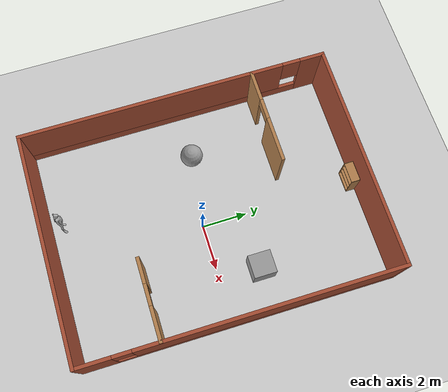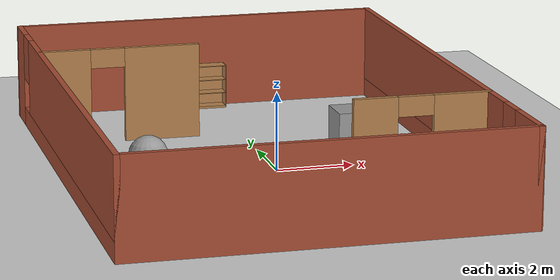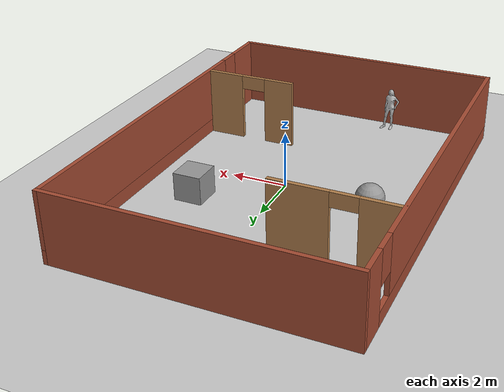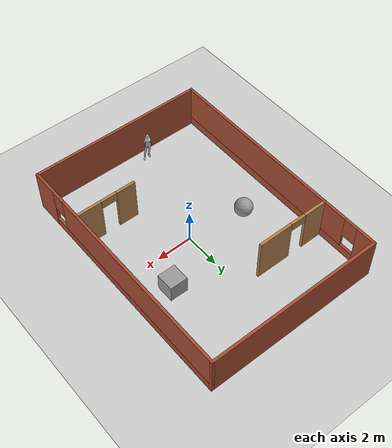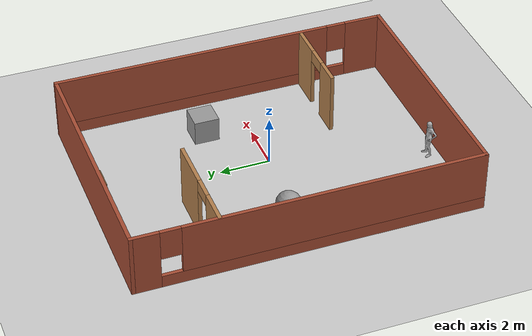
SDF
<sdf version="1.7">
 <world name="default">
  <light name="sun" type="directional">
   <pose>0 0 10 0 -0 0</pose>
   <diffuse>0.8 0.8 0.8 1</diffuse>
   <specular>0.2 0.2 0.2 1</specular>
   <attenuation>
    <range>1000</range>
    <constant>0.9</constant>
    <linear>0.01</linear>
    <quadratic>0.001</quadratic>
   </attenuation>
   <direction>-0.5 0.1 -0.9</direction>
   <spot><inner_angle>0</inner_angle><outer_angle>0</outer_angle><falloff>0</falloff></spot>
  </light>
  <model name="ground_plane">
   <static>1</static>
   <link name="link">
    <collision name="collision">
     <geometry><plane><normal>0 0 1</normal><size>100 100</size></plane></geometry>
     <surface>
      <contact><collide_bitmask>65535</collide_bitmask></contact>
      <friction><ode><mu>100</mu><mu2>50</mu2></ode></friction>
     </surface>
    </collision>
    <visual name="visual">
     <cast_shadows>0</cast_shadows>
     <geometry><plane><normal>0 0 1</normal><size>100 100</size></plane></geometry>
     <material>
      <script><uri>file://media/materials/scripts/gazebo.material</uri><name>Gazebo/Grey</name></script>
     </material>
    </visual>
   </link>
  </model>
  <gravity>0 0 -9.8</gravity>
  <magnetic_field>6e-06 2.3e-05 -4.2e-05</magnetic_field>
  <atmosphere type="adiabatic"/>
  <physics type="ode">
   <max_step_size>0.001</max_step_size>
   <real_time_factor>1</real_time_factor>
   <real_time_update_rate>1000</real_time_update_rate>
  </physics>
  <scene><ambient>0.4 0.4 0.4 1</ambient><background>0.7 0.7 0.7 1</background><shadows>1</shadows></scene>
  <spherical_coordinates>
   <surface_model>EARTH_WGS84</surface_model>
   <latitude_deg>0</latitude_deg>
   <longitude_deg>0</longitude_deg>
   <elevation>0</elevation>
   <heading_deg>0</heading_deg>
  </spherical_coordinates>
  <model name="gjjroom">
   <pose>-0.411943 0.323415 0 0 -0 0</pose>
   <link name="Wall_12">
    <pose>-4.925 0 0 0 -0 -1.5708</pose>
    <visual name="Wall_12_Visual_0">
     <pose>-6.3093 0 1.25 0 -0 0</pose>
     <geometry><box><size>1.1314 0.15 2.5</size></box></geometry>
     <material>
      <script><uri>file://media/materials/scripts/gazebo.material</uri><name>Gazebo/Bricks</name></script>
      <ambient>1 1 1 1</ambient>
     </material>
     <meta><layer>0</layer></meta>
    </visual>
    <collision name="Wall_12_Collision_0">
     <geometry><box><size>1.1314 0.15 2.5</size></box></geometry>
     <pose>-6.3093 0 1.25 0 -0 0</pose>
    </collision>
    <visual name="Wall_12_Visual_1">
     <pose>0.5657 0 0.25 0 -0 0</pose>
     <geometry><box><size>12.6186 0.15 0.5</size></box></geometry>
     <material>
      <script><uri>file://media/materials/scripts/gazebo.material</uri><name>Gazebo/Bricks</name></script>
      <ambient>1 1 1 1</ambient>
     </material>
     <meta><layer>0</layer></meta>
    </visual>
    <collision name="Wall_12_Collision_1">
     <geometry><box><size>12.6186 0.15 0.5</size></box></geometry>
     <pose>0.5657 0 0.25 0 -0 0</pose>
    </collision>
    <visual name="Wall_12_Visual_2">
     <pose>0.9657 0 1.5 0 -0 0</pose>
     <geometry><box><size>11.8186 0.15 2</size></box></geometry>
     <material>
      <script><uri>file://media/materials/scripts/gazebo.material</uri><name>Gazebo/Bricks</name></script>
      <ambient>1 1 1 1</ambient>
     </material>
     <meta><layer>0</layer></meta>
    </visual>
    <collision name="Wall_12_Collision_2">
     <geometry><box><size>11.8186 0.15 2</size></box></geometry>
     <pose>0.9657 0 1.5 0 -0 0</pose>
    </collision>
    <visual name="Wall_12_Visual_3">
     <pose>-5.3436 0 1.9 0 -0 0</pose>
     <geometry><box><size>0.8 0.15 1.2</size></box></geometry>
     <material>
      <script><uri>file://media/materials/scripts/gazebo.material</uri><name>Gazebo/Bricks</name></script>
      <ambient>1 1 1 1</ambient>
     </material>
     <meta><layer>0</layer></meta>
    </visual>
    <collision name="Wall_12_Collision_3">
     <geometry><box><size>0.8 0.15 1.2</size></box></geometry>
     <pose>-5.3436 0 1.9 0 -0 0</pose>
    </collision>
   </link>
   <link name="Wall_13">
    <collision name="Wall_13_Collision">
     <geometry><box><size>10 0.15 2.5</size></box></geometry>
     <pose>0 0 1.25 0 -0 0</pose>
    </collision>
    <visual name="Wall_13_Visual">
     <pose>0 0 1.25 0 -0 0</pose>
     <geometry><box><size>10 0.15 2.5</size></box></geometry>
     <material>
      <script><uri>file://media/materials/scripts/gazebo.material</uri><name>Gazebo/Bricks</name></script>
      <ambient>1 1 1 1</ambient>
     </material>
     <meta><layer>0</layer></meta>
    </visual>
    <pose>0 -6.8 0 0 -0 0</pose>
   </link>
   <link name="Wall_14">
    <pose>4.925 0 0 0 -0 1.5708</pose>
    <visual name="Wall_14_Visual_0">
     <pose>-6.08333 0 1.25 0 -0 0</pose>
     <geometry><box><size>1.58334 0.15 2.5</size></box></geometry>
     <material>
      <script><uri>file://media/materials/scripts/gazebo.material</uri><name>Gazebo/Bricks</name></script>
      <ambient>1 1 1 1</ambient>
     </material>
     <meta><layer>0</layer></meta>
    </visual>
    <collision name="Wall_14_Collision_0">
     <geometry><box><size>1.58334 0.15 2.5</size></box></geometry>
     <pose>-6.08333 0 1.25 0 -0 0</pose>
    </collision>
    <visual name="Wall_14_Visual_1">
     <pose>0.791669 0 0.25 0 -0 0</pose>
     <geometry><box><size>12.1667 0.15 0.5</size></box></geometry>
     <material>
      <script><uri>file://media/materials/scripts/gazebo.material</uri><name>Gazebo/Bricks</name></script>
      <ambient>1 1 1 1</ambient>
     </material>
     <meta><layer>0</layer></meta>
    </visual>
    <collision name="Wall_14_Collision_1">
     <geometry><box><size>12.1667 0.15 0.5</size></box></geometry>
     <pose>0.791669 0 0.25 0 -0 0</pose>
    </collision>
    <visual name="Wall_14_Visual_2">
     <pose>1.19167 0 1.5 0 -0 0</pose>
     <geometry><box><size>11.3667 0.15 2</size></box></geometry>
     <material>
      <script><uri>file://media/materials/scripts/gazebo.material</uri><name>Gazebo/Bricks</name></script>
      <ambient>1 1 1 1</ambient>
     </material>
     <meta><layer>0</layer></meta>
    </visual>
    <collision name="Wall_14_Collision_2">
     <geometry><box><size>11.3667 0.15 2</size></box></geometry>
     <pose>1.19167 0 1.5 0 -0 0</pose>
    </collision>
    <visual name="Wall_14_Visual_3">
     <pose>-4.89166 0 1.9 0 -0 0</pose>
     <geometry><box><size>0.8 0.15 1.2</size></box></geometry>
     <material>
      <script><uri>file://media/materials/scripts/gazebo.material</uri><name>Gazebo/Bricks</name></script>
      <ambient>1 1 1 1</ambient>
     </material>
     <meta><layer>0</layer></meta>
    </visual>
    <collision name="Wall_14_Collision_3">
     <geometry><box><size>0.8 0.15 1.2</size></box></geometry>
     <pose>-4.89166 0 1.9 0 -0 0</pose>
    </collision>
   </link>
   <link name="Wall_15">
    <collision name="Wall_15_Collision">
     <geometry><box><size>10 0.15 2.5</size></box></geometry>
     <pose>0 0 1.25 0 -0 0</pose>
    </collision>
    <visual name="Wall_15_Visual">
     <pose>0 0 1.25 0 -0 0</pose>
     <geometry><box><size>10 0.15 2.5</size></box></geometry>
     <material>
      <script><uri>file://media/materials/scripts/gazebo.material</uri><name>Gazebo/Bricks</name></script>
      <ambient>1 1 1 1</ambient>
     </material>
     <meta><layer>0</layer></meta>
    </visual>
    <pose>0 6.8 0 0 -0 3.14159</pose>
   </link>
   <link name="Wall_17">
    <pose>-2.83454 3.5231 0 0 -0 0</pose>
    <visual name="Wall_17_Visual_0">
     <pose>-1.4427 0 1.25 0 -0 0</pose>
     <geometry><box><size>1.36459 0.15 2.5</size></box></geometry>
     <material>
      <script><uri>file://media/materials/scripts/gazebo.material</uri><name>Gazebo/Wood</name></script>
      <ambient>1 1 1 1</ambient>
     </material>
     <meta><layer>0</layer></meta>
    </visual>
    <collision name="Wall_17_Collision_0">
     <geometry><box><size>1.36459 0.15 2.5</size></box></geometry>
     <pose>-1.4427 0 1.25 0 -0 0</pose>
    </collision>
    <visual name="Wall_17_Visual_1">
     <pose>1.1323 0 1.25 0 -0 0</pose>
     <geometry><box><size>1.98541 0.15 2.5</size></box></geometry>
     <material>
      <script><uri>file://media/materials/scripts/gazebo.material</uri><name>Gazebo/Wood</name></script>
      <ambient>1 1 1 1</ambient>
     </material>
     <meta><layer>0</layer></meta>
    </visual>
    <collision name="Wall_17_Collision_1">
     <geometry><box><size>1.98541 0.15 2.5</size></box></geometry>
     <pose>1.1323 0 1.25 0 -0 0</pose>
    </collision>
    <visual name="Wall_17_Visual_2">
     <pose>-0.31041 0 2.25 0 -0 0</pose>
     <geometry><box><size>0.9 0.15 0.5</size></box></geometry>
     <material>
      <script><uri>file://media/materials/scripts/gazebo.material</uri><name>Gazebo/Wood</name></script>
      <ambient>1 1 1 1</ambient>
     </material>
     <meta><layer>0</layer></meta>
    </visual>
    <collision name="Wall_17_Collision_2">
     <geometry><box><size>0.9 0.15 0.5</size></box></geometry>
     <pose>-0.31041 0 2.25 0 -0 0</pose>
    </collision>
   </link>
   <link name="Wall_22">
    <pose>3.2307 -3.35435 0 0 -0 3.14159</pose>
    <visual name="Wall_22_Visual_0">
     <pose>-1.00702 0 1.25 0 -0 0</pose>
     <geometry><box><size>1.48596 0.15 2.5</size></box></geometry>
     <material>
      <script><uri>file://media/materials/scripts/gazebo.material</uri><name>Gazebo/Wood</name></script>
      <ambient>1 1 1 1</ambient>
     </material>
     <meta><layer>0</layer></meta>
    </visual>
    <collision name="Wall_22_Collision_0">
     <geometry><box><size>1.48596 0.15 2.5</size></box></geometry>
     <pose>-1.00702 0 1.25 0 -0 0</pose>
    </collision>
    <visual name="Wall_22_Visual_1">
     <pose>1.19298 0 1.25 0 -0 0</pose>
     <geometry><box><size>1.11404 0.15 2.5</size></box></geometry>
     <material>
      <script><uri>file://media/materials/scripts/gazebo.material</uri><name>Gazebo/Wood</name></script>
      <ambient>1 1 1 1</ambient>
     </material>
     <meta><layer>0</layer></meta>
    </visual>
    <collision name="Wall_22_Collision_1">
     <geometry><box><size>1.11404 0.15 2.5</size></box></geometry>
     <pose>1.19298 0 1.25 0 -0 0</pose>
    </collision>
    <visual name="Wall_22_Visual_2">
     <pose>0.185957 0 2.25 0 -0 0</pose>
     <geometry><box><size>0.9 0.15 0.5</size></box></geometry>
     <material>
      <script><uri>file://media/materials/scripts/gazebo.material</uri><name>Gazebo/Wood</name></script>
      <ambient>1 1 1 1</ambient>
     </material>
     <meta><layer>0</layer></meta>
    </visual>
    <collision name="Wall_22_Collision_2">
     <geometry><box><size>0.9 0.15 0.5</size></box></geometry>
     <pose>0.185957 0 2.25 0 -0 0</pose>
    </collision>
   </link>
   <static>1</static>
  </model>
  <model name="bookshelf">
   <static>1</static>
   <link name="link">
    <inertial><mass>1</mass></inertial>
    <collision name="back">
     <pose>0 0.005 0.6 0 -0 0</pose>
     <geometry><box><size>0.9 0.01 1.2</size></box></geometry>
    </collision>
    <visual name="visual1">
     <pose>0 0.005 0.6 0 -0 0</pose>
     <geometry><box><size>0.9 0.01 1.2</size></box></geometry>
     <material>
      <script><uri>file://media/materials/scripts/gazebo.material</uri><name>Gazebo/Wood</name></script>
     </material>
    </visual>
    <collision name="left_side">
     <pose>0.45 -0.195 0.6 0 -0 0</pose>
     <geometry><box><size>0.02 0.4 1.2</size></box></geometry>
    </collision>
    <visual name="visual2">
     <pose>0.45 -0.195 0.6 0 -0 0</pose>
     <geometry><box><size>0.02 0.4 1.2</size></box></geometry>
     <material>
      <script><uri>file://media/materials/scripts/gazebo.material</uri><name>Gazebo/Wood</name></script>
     </material>
    </visual>
    <collision name="right_side">
     <pose>-0.45 -0.195 0.6 0 -0 0</pose>
     <geometry><box><size>0.02 0.4 1.2</size></box></geometry>
    </collision>
    <visual name="visual3">
     <pose>-0.45 -0.195 0.6 0 -0 0</pose>
     <geometry><box><size>0.02 0.4 1.2</size></box></geometry>
     <material>
      <script><uri>file://media/materials/scripts/gazebo.material</uri><name>Gazebo/Wood</name></script>
     </material>
    </visual>
    <collision name="bottom">
     <pose>0 -0.195 0.03 0 -0 0</pose>
     <geometry><box><size>0.88 0.4 0.06</size></box></geometry>
    </collision>
    <visual name="visual4">
     <pose>0 -0.195 0.03 0 -0 0</pose>
     <geometry><box><size>0.88 0.4 0.06</size></box></geometry>
     <material>
      <script><uri>file://media/materials/scripts/gazebo.material</uri><name>Gazebo/Wood</name></script>
     </material>
    </visual>
    <collision name="top">
     <pose>0 -0.195 1.19 0 -0 0</pose>
     <geometry><box><size>0.88 0.4 0.02</size></box></geometry>
    </collision>
    <visual name="visual5">
     <pose>0 -0.195 1.19 0 -0 0</pose>
     <geometry><box><size>0.88 0.4 0.02</size></box></geometry>
     <material>
      <script><uri>file://media/materials/scripts/gazebo.material</uri><name>Gazebo/Wood</name></script>
     </material>
    </visual>
    <collision name="low_shelf">
     <pose>0 -0.195 0.43 0 -0 0</pose>
     <geometry><box><size>0.88 0.4 0.02</size></box></geometry>
    </collision>
    <visual name="visual6">
     <pose>0 -0.195 0.43 0 -0 0</pose>
     <geometry><box><size>0.88 0.4 0.02</size></box></geometry>
     <material>
      <script><uri>file://media/materials/scripts/gazebo.material</uri><name>Gazebo/Wood</name></script>
     </material>
    </visual>
    <collision name="high_shelf">
     <pose>0 -0.195 0.8 0 -0 0</pose>
     <geometry><box><size>0.88 0.4 0.02</size></box></geometry>
    </collision>
    <visual name="visual7">
     <pose>0 -0.195 0.8 0 -0 0</pose>
     <geometry><box><size>0.88 0.4 0.02</size></box></geometry>
     <material>
      <script><uri>file://media/materials/scripts/gazebo.material</uri><name>Gazebo/Wood</name></script>
     </material>
    </visual>
   </link>
   <pose>-0.151113 7.02993 0 0 -0 0</pose>
  </model>
  <model name="gina">
   <link name="link">
    <inertial>
     <pose>0 -0.1 0.95 0 -0 0</pose>
     <mass>80</mass>
     <inertia><ixx>24.88</ixx><ixy>0</ixy><ixz>0</ixz><iyy>25.73</iyy><iyz>0</iyz><izz>2.48</izz></inertia>
    </inertial>
    <collision name="bottom">
     <pose>0 0 0.01 0 -0 1.57</pose>
     <geometry><box><size>0.5 0.35 0.02</size></box></geometry>
    </collision>
    <collision name="person">
     <pose>0 0 0.02 0 -0 1.57</pose>
     <geometry><mesh><uri>model://gina/meshes/gina2.dae</uri></mesh></geometry>
    </collision>
    <visual name="visual">
     <pose>0 0 0.02 0 -0 1.57</pose>
     <geometry><mesh><uri>model://gina/meshes/gina2.dae</uri></mesh></geometry>
    </visual>
   </link>
   <pose>-1.822 -5.88105 2e-06 7e-06 -0 1.31428</pose>
  </model>
  <model name="unit_sphere">
   <pose>-3.19946 0.434805 0.5 0 -0 0</pose>
   <link name="link">
    <inertial>
     <mass>1</mass>
     <inertia><ixx>0.1</ixx><ixy>0</ixy><ixz>0</ixz><iyy>0.1</iyy><iyz>0</iyz><izz>0.1</izz></inertia>
    </inertial>
    <collision name="collision"><geometry><sphere><radius>0.5</radius></sphere></geometry></collision>
    <visual name="visual">
     <geometry><sphere><radius>0.5</radius></sphere></geometry>
     <material>
      <script><name>Gazebo/Grey</name><uri>file://media/materials/scripts/gazebo.material</uri></script>
     </material>
    </visual>
   </link>
  </model>
  <model name="unit_box">
   <pose>2.52726 1.83425 0.499995 1e-05 -0 0</pose>
   <link name="link">
    <inertial>
     <mass>1</mass>
     <inertia>
      <ixx>0.166667</ixx>
      <ixy>0</ixy>
      <ixz>0</ixz>
      <iyy>0.166667</iyy>
      <iyz>0</iyz>
      <izz>0.166667</izz>
     </inertia>
    </inertial>
    <collision name="collision"><geometry><box><size>1 1 1</size></box></geometry></collision>
    <visual name="visual">
     <geometry><box><size>1 1 1</size></box></geometry>
     <material>
      <script><name>Gazebo/Grey</name><uri>file://media/materials/scripts/gazebo.material</uri></script>
     </material>
    </visual>
   </link>
  </model>
 </world>
</sdf>
